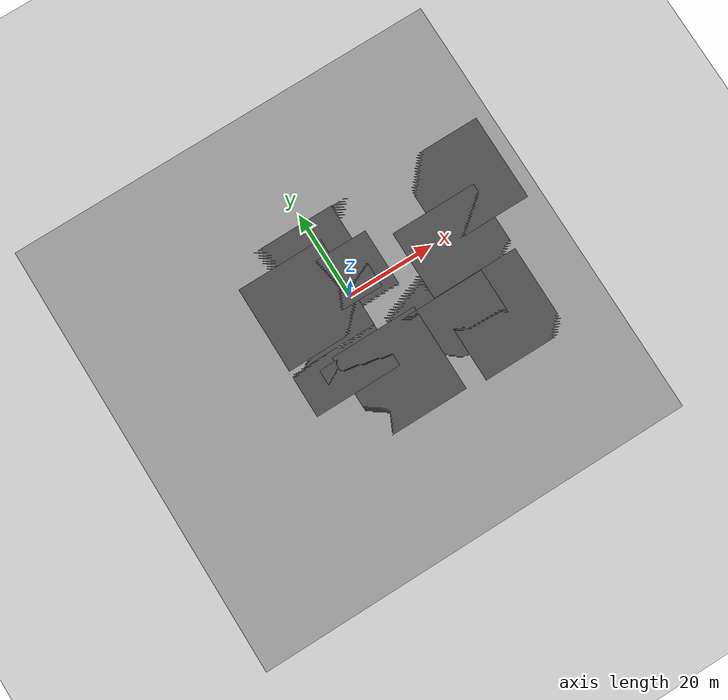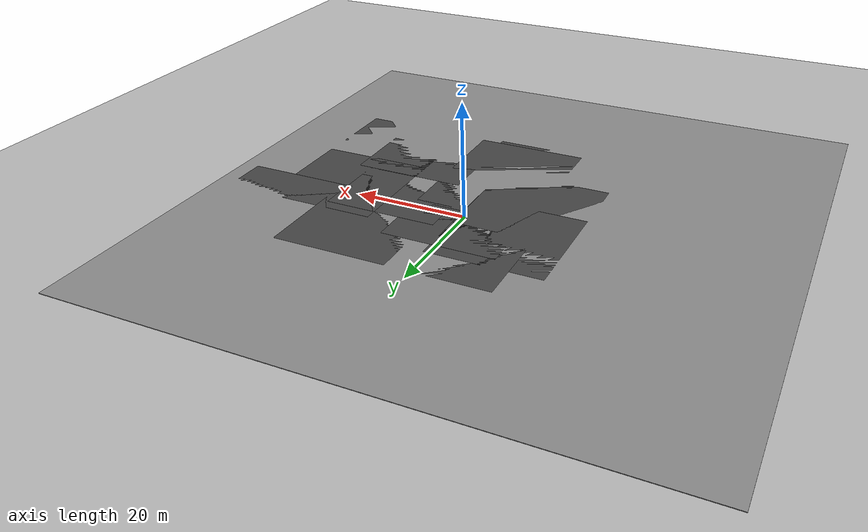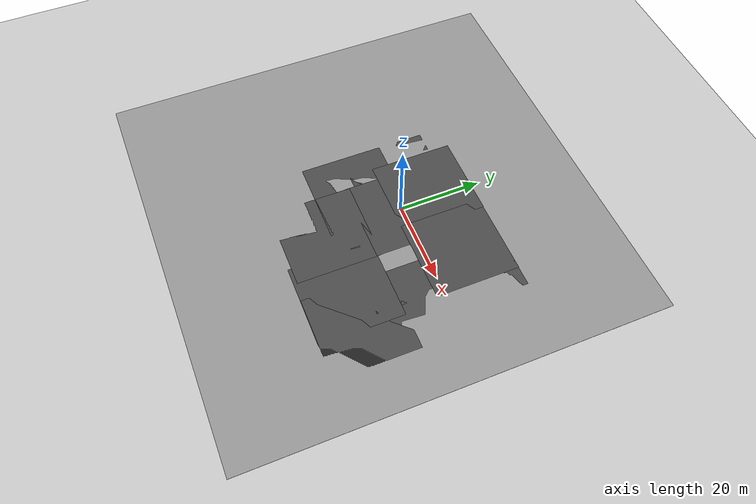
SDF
<sdf version="1.6">
 <world name="default">
  <light name="sun" type="directional">
   <pose>0 0 10 0 -0 0</pose>
   <diffuse>0.8 0.8 0.8 1</diffuse>
   <specular>0.2 0.2 0.2 1</specular>
   <attenuation>
    <range>1000</range>
    <constant>0.9</constant>
    <linear>0.01</linear>
    <quadratic>0.001</quadratic>
   </attenuation>
   <direction>-0.5 0.1 -0.9</direction>
  </light>
  <model name="ground_plane">
   <static>1</static>
   <link name="link">
    <collision name="collision">
     <geometry><plane><normal>0 0 1</normal><size>100 100</size></plane></geometry>
     <surface><friction><ode><mu>100</mu><mu2>50</mu2></ode></friction></surface>
    </collision>
    <visual name="visual">
     <cast_shadows>0</cast_shadows>
     <geometry><plane><normal>0 0 1</normal><size>100 100</size></plane></geometry>
     <material>
      <script><uri>file://media/materials/scripts/gazebo.material</uri><name>Gazebo/Grey</name></script>
     </material>
    </visual>
   </link>
  </model>
  <gravity>0 0 -9.8</gravity>
  <magnetic_field>6e-06 2.3e-05 -4.2e-05</magnetic_field>
  <atmosphere type="adiabatic"/>
  <physics name="default_physics" default="0" type="ode">
   <max_step_size>0.001</max_step_size>
   <real_time_factor>1</real_time_factor>
   <real_time_update_rate>1000</real_time_update_rate>
  </physics>
  <scene><ambient>0.4 0.4 0.4 1</ambient><background>0.7 0.7 0.7 1</background><shadows>1</shadows></scene>
  <audio><device>default</device></audio>
  <spherical_coordinates>
   <surface_model>EARTH_WGS84</surface_model>
   <latitude_deg>0</latitude_deg>
   <longitude_deg>0</longitude_deg>
   <elevation>0</elevation>
   <heading_deg>0</heading_deg>
  </spherical_coordinates>
  <model name="ground_plane_0">
   <static>1</static>
   <link name="link">
    <collision name="collision">
     <geometry><plane><normal>0 0 1</normal><size>100 100</size></plane></geometry>
     <surface>
      <contact><collide_bitmask>65535</collide_bitmask></contact>
      <friction><ode><mu>100</mu><mu2>50</mu2></ode></friction>
     </surface>
    </collision>
    <visual name="visual">
     <cast_shadows>0</cast_shadows>
     <geometry><plane><normal>0 0 1</normal><size>100 100</size></plane></geometry>
     <material>
      <script><uri>file://media/materials/scripts/gazebo.material</uri><name>Gazebo/Grey</name></script>
     </material>
    </visual>
   </link>
   <pose>-4.32396 -5.44416 0 0 -0 0</pose>
  </model>
  <model name="asphalt_plane">
   <static>1</static>
   <link name="link">
    <collision name="collision"><geometry><box><size>20 20 0.1</size></box></geometry></collision>
    <visual name="visual">
     <cast_shadows>0</cast_shadows>
     <geometry><box><size>20 20 0.1</size></box></geometry>
     <material>
      <script>
       <uri>model://asphalt_plane/materials/scripts</uri>
       <uri>model://asphalt_plane/materials/textures</uri>
       <name>vrc/asphalt</name>
      </script>
     </material>
    </visual>
   </link>
   <pose>-0.013888 -0.045243 0 0 -0 0</pose>
  </model>
  <model name="asphalt_plane_0">
   <static>1</static>
   <link name="link">
    <collision name="collision"><geometry><box><size>20 20 0.1</size></box></geometry></collision>
    <visual name="visual">
     <cast_shadows>0</cast_shadows>
     <geometry><box><size>20 20 0.1</size></box></geometry>
     <material>
      <script>
       <uri>model://asphalt_plane/materials/scripts</uri>
       <uri>model://asphalt_plane/materials/textures</uri>
       <name>vrc/asphalt</name>
      </script>
     </material>
    </visual>
   </link>
   <pose>0.060248 -18.975 0 0 -0 0</pose>
  </model>
  <model name="asphalt_plane_clone">
   <static>1</static>
   <link name="link">
    <collision name="collision"><geometry><box><size>20 20 0.1</size></box></geometry></collision>
    <visual name="visual">
     <cast_shadows>0</cast_shadows>
     <geometry><box><size>20 20 0.1</size></box></geometry>
     <material>
      <script>
       <uri>model://asphalt_plane/materials/scripts</uri>
       <uri>model://asphalt_plane/materials/textures</uri>
       <name>vrc/asphalt</name>
      </script>
     </material>
    </visual>
   </link>
   <pose>-3.22898 8.22327 0 0 -0 0</pose>
  </model>
  <model name="asphalt_plane_clone_0">
   <static>1</static>
   <link name="link">
    <collision name="collision"><geometry><box><size>20 20 0.1</size></box></geometry></collision>
    <visual name="visual">
     <cast_shadows>0</cast_shadows>
     <geometry><box><size>20 20 0.1</size></box></geometry>
     <material>
      <script>
       <uri>model://asphalt_plane/materials/scripts</uri>
       <uri>model://asphalt_plane/materials/textures</uri>
       <name>vrc/asphalt</name>
      </script>
     </material>
    </visual>
   </link>
   <pose>-8.88521 2.31692 0 0 -0 0</pose>
  </model>
  <model name="asphalt_plane_clone_1">
   <static>1</static>
   <link name="link">
    <collision name="collision"><geometry><box><size>20 20 0.1</size></box></geometry></collision>
    <visual name="visual">
     <cast_shadows>0</cast_shadows>
     <geometry><box><size>20 20 0.1</size></box></geometry>
     <material>
      <script>
       <uri>model://asphalt_plane/materials/scripts</uri>
       <uri>model://asphalt_plane/materials/textures</uri>
       <name>vrc/asphalt</name>
      </script>
     </material>
    </visual>
   </link>
   <pose>-8.93831 -7.67931 0 0 -0 0</pose>
  </model>
  <model name="asphalt_plane_clone_2">
   <static>1</static>
   <link name="link">
    <collision name="collision"><geometry><box><size>20 20 0.1</size></box></geometry></collision>
    <visual name="visual">
     <cast_shadows>0</cast_shadows>
     <geometry><box><size>20 20 0.1</size></box></geometry>
     <material>
      <script>
       <uri>model://asphalt_plane/materials/scripts</uri>
       <uri>model://asphalt_plane/materials/textures</uri>
       <name>vrc/asphalt</name>
      </script>
     </material>
    </visual>
   </link>
   <pose>-3.53638 -19.893 0 0 -0 0</pose>
  </model>
  <model name="asphalt_plane_clone_3">
   <static>1</static>
   <link name="link">
    <collision name="collision"><geometry><box><size>20 20 0.1</size></box></geometry></collision>
    <visual name="visual">
     <cast_shadows>0</cast_shadows>
     <geometry><box><size>20 20 0.1</size></box></geometry>
     <material>
      <script>
       <uri>model://asphalt_plane/materials/scripts</uri>
       <uri>model://asphalt_plane/materials/textures</uri>
       <name>vrc/asphalt</name>
      </script>
     </material>
    </visual>
   </link>
   <pose>15.9903 -19.8401 0 0 -0 0</pose>
  </model>
  <model name="asphalt_plane_clone_4">
   <static>1</static>
   <link name="link">
    <collision name="collision"><geometry><box><size>20 20 0.1</size></box></geometry></collision>
    <visual name="visual">
     <cast_shadows>0</cast_shadows>
     <geometry><box><size>20 20 0.1</size></box></geometry>
     <material>
      <script>
       <uri>model://asphalt_plane/materials/scripts</uri>
       <uri>model://asphalt_plane/materials/textures</uri>
       <name>vrc/asphalt</name>
      </script>
     </material>
    </visual>
   </link>
   <pose>24.4254 -19.7298 0 0 -0 0</pose>
  </model>
  <model name="asphalt_plane_clone_5">
   <static>1</static>
   <link name="link">
    <collision name="collision"><geometry><box><size>20 20 0.1</size></box></geometry></collision>
    <visual name="visual">
     <cast_shadows>0</cast_shadows>
     <geometry><box><size>20 20 0.1</size></box></geometry>
     <material>
      <script>
       <uri>model://asphalt_plane/materials/scripts</uri>
       <uri>model://asphalt_plane/materials/textures</uri>
       <name>vrc/asphalt</name>
      </script>
     </material>
    </visual>
   </link>
   <pose>24.5093 -3.64353 0 0 -0 0</pose>
  </model>
  <model name="asphalt_plane_clone_6">
   <static>1</static>
   <link name="link">
    <collision name="collision"><geometry><box><size>20 20 0.1</size></box></geometry></collision>
    <visual name="visual">
     <cast_shadows>0</cast_shadows>
     <geometry><box><size>20 20 0.1</size></box></geometry>
     <material>
      <script>
       <uri>model://asphalt_plane/materials/scripts</uri>
       <uri>model://asphalt_plane/materials/textures</uri>
       <name>vrc/asphalt</name>
      </script>
     </material>
    </visual>
   </link>
   <pose>14.5764 8.12526 0 0 -0 0</pose>
  </model>
  <model name="asphalt_plane_clone_7">
   <static>1</static>
   <link name="link">
    <collision name="collision"><geometry><box><size>20 20 0.1</size></box></geometry></collision>
    <visual name="visual">
     <cast_shadows>0</cast_shadows>
     <geometry><box><size>20 20 0.1</size></box></geometry>
     <material>
      <script>
       <uri>model://asphalt_plane/materials/scripts</uri>
       <uri>model://asphalt_plane/materials/textures</uri>
       <name>vrc/asphalt</name>
      </script>
     </material>
    </visual>
   </link>
   <pose>32.6949 8.02309 0 0 -0 0</pose>
  </model>
  <model name="asphalt_plane_clone_8">
   <static>1</static>
   <link name="link">
    <collision name="collision"><geometry><box><size>20 20 0.1</size></box></geometry></collision>
    <visual name="visual">
     <cast_shadows>0</cast_shadows>
     <geometry><box><size>20 20 0.1</size></box></geometry>
     <material>
      <script>
       <uri>model://asphalt_plane/materials/scripts</uri>
       <uri>model://asphalt_plane/materials/textures</uri>
       <name>vrc/asphalt</name>
      </script>
     </material>
    </visual>
   </link>
   <pose>13.5677 -5.61501 0 0 -0 0</pose>
  </model>
  <model name="asphalt_plane_clone_9">
   <static>1</static>
   <link name="link">
    <collision name="collision"><geometry><box><size>20 20 0.1</size></box></geometry></collision>
    <visual name="visual">
     <cast_shadows>0</cast_shadows>
     <geometry><box><size>20 20 0.1</size></box></geometry>
     <material>
      <script>
       <uri>model://asphalt_plane/materials/scripts</uri>
       <uri>model://asphalt_plane/materials/textures</uri>
       <name>vrc/asphalt</name>
      </script>
     </material>
    </visual>
   </link>
   <pose>-8.87683 3.2545 0 0 -0 0</pose>
  </model>
 </world>
</sdf>
